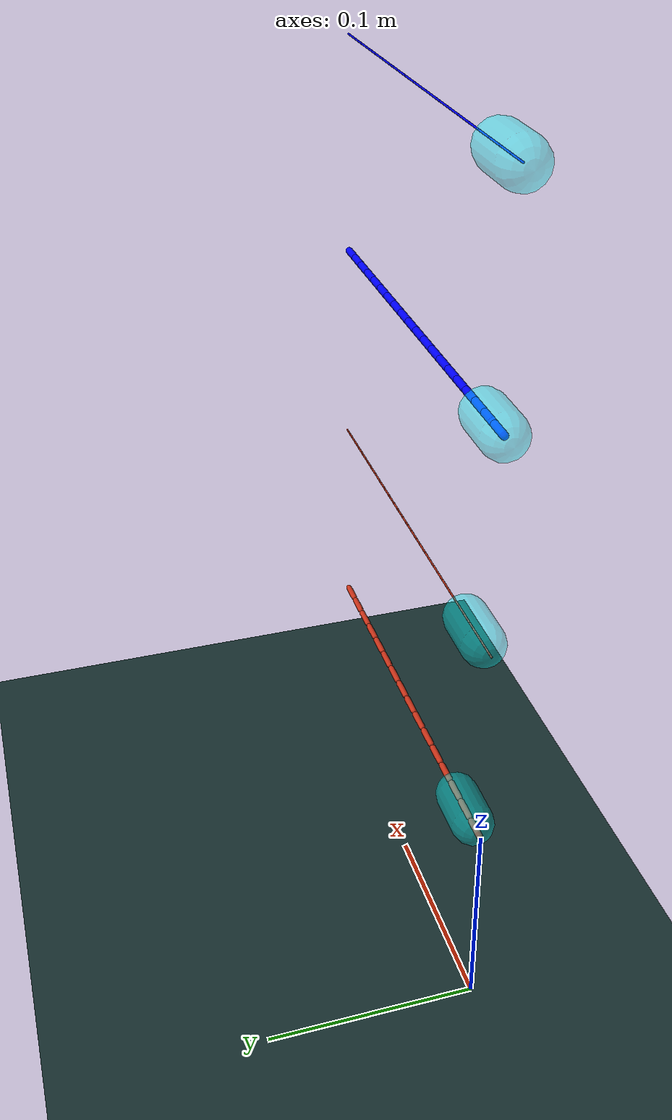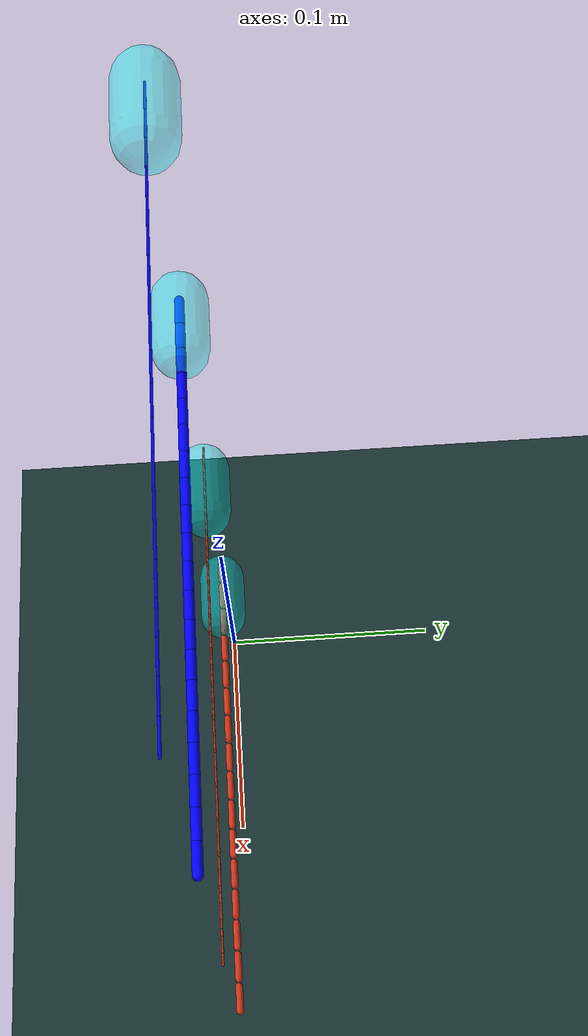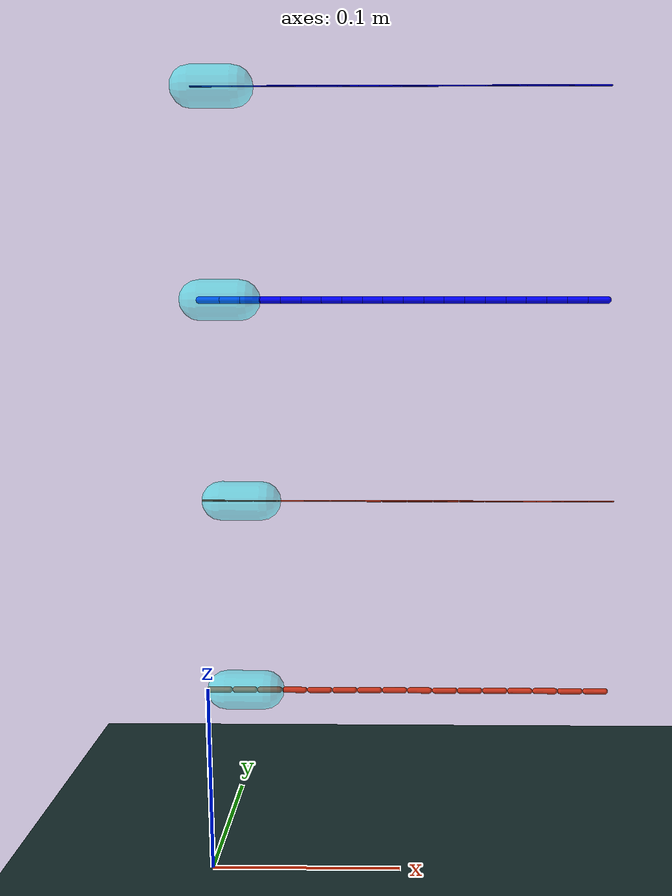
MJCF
<mujoco model="All_Whiskers">
  <compiler angle="radian" meshdir="asset/" texturedir="asset/"/>

  <option timestep="0.0002" gravity="0 0 0"/>

  <visual>
    <global elevation="0"/>
    <map stiffness="700" fogstart="1" fogend="15" zfar="40" haze="1" shadowscale="0.5"/>
    <rgba haze="0.15 0.25 0.35 1"/>
  </visual>

  <statistic meansize="0.05" extent="1" center="0 0 0.2"/>

  <default>
    <geom solref="0.0005 0.009" solimp="0.95 0.99 0.0001" margin="0.0003"/>
  </default>

  <extension>
    <plugin plugin="mujoco.elasticity.cable">
      <instance name="compositeCompositeNylon">
        <config key="twist" value="1e10"/>
        <config key="bend" value="3.1e9"/>
        <config key="vmax" value="0.1"/>
      </instance>
      <instance name="compositeComposite_Aluminium">
        <config key="twist" value="1e10"/>
        <config key="bend" value="70e9"/>
        <config key="vmax" value="0.1"/>
      </instance>
    </plugin>
  </extension>

  <custom>
    <text name="composite_CompositeNylon" data="rope_CompositeNylon"/>
    <text name="composite_Composite_Aluminium" data="rope_Composite_Aluminium"/>
  </custom>

  <worldbody>
    <light diffuse=".4 .2 .4" specular="0.2 0.1 0.1" pos="0 0 2.0" dir="0 0 -1" castshadow="false"/>
    <light directional="true" diffuse=".8 .8 .8" specular="0.2 0.2 0.2" pos="0 0 4" dir="0 0 -1"/>
   <geom name="ground" size="0 0 1" type="plane" condim="1" pos="0 0 0" quat="1 0 0 0" rgba = "0.1 0.2 0.2 1"/>
    <body name="WhiskerBody_Nylon" pos="0.0065 0 0.1">
      <body name="Seg0">
        <joint name="hinge0" pos="-0.005 0 0" axis="0 0 1" stiffness="0.888" damping="0.03" range="0 0.349"/>
        <geom name="Seg0_geom" size="0.0015 0.005" quat="-0.707107 0 0.707107 0" type="capsule" mass="0.0001" rgba="0.8 0.2 0.1 1"/>
       <site name="segmented_whis_base_site_nylon" pos="0.0135 0 0" quat="0.707107 0 0.707107 0" size="0.01 0.01" type="capsule" rgba="0 1 1 0.4"/>
        <body name="Seg1">
          <joint name="hinge1" pos="0.0065 0 0" axis="0 0 1" stiffness="0.888" range="-1.5708 1.5708" damping="0.03"/>
          <geom name="Seg1_geom" size="0.0015 0.005" pos="0.013 0 0" quat="-0.707107 0 0.707107 0" type="capsule" mass="0.0001" rgba="0.8 0.2 0.1 1"/>
          <body name="Seg2">
            <joint name="hinge2" pos="0.0195 0 0" axis="0 0 1" stiffness="0.888" range="-1.5708 1.5708" damping="0.03"/>
            <geom name="Seg2_geom" size="0.0015 0.005" pos="0.026 0 0" quat="-0.707107 0 0.707107 0" type="capsule" mass="0.0001" rgba="0.8 0.2 0.1 1"/>
            <body name="Seg3">
              <joint name="hinge3" pos="0.0325 0 0" axis="0 0 1" stiffness="0.888" range="-1.5708 1.5708" damping="0.03"/>
              <geom name="Seg3_geom" size="0.0015 0.005" pos="0.039 0 0" quat="-0.707107 0 0.707107 0" type="capsule" mass="0.0001" rgba="0.8 0.2 0.1 1"/>

              <body name="Seg4">
                <joint name="hinge4" pos="0.0455 0 0" axis="0 0 1" stiffness="0.888" range="-1.5708 1.5708" damping="0.03"/>
                <geom name="Seg4_geom" size="0.0015 0.005" pos="0.052 0 0" quat="-0.707107 0 0.707107 0" type="capsule" mass="0.0001" rgba="0.8 0.2 0.1 1"/>
                <body name="Seg5">
                  <joint name="hinge5" pos="0.0585 0 0" axis="0 0 1" stiffness="0.888" range="-1.5708 1.5708" damping="0.03"/>
                  <geom name="Seg5_geom" size="0.0015 0.005" pos="0.065 0 0" quat="-0.707107 0 0.707107 0" type="capsule" mass="0.0001" rgba="0.8 0.2 0.1 1"/>
                  <body name="Seg6">
                    <joint name="hinge6" pos="0.0715 0 0" axis="0 0 1" stiffness="0.888" range="-1.5708 1.5708" damping="0.03"/>
                    <geom name="Seg6_geom" size="0.0015 0.005" pos="0.078 0 0" quat="-0.707107 0 0.707107 0" type="capsule" mass="0.0001" rgba="0.8 0.2 0.1 1"/>
                    <body name="Seg7">
                      <joint name="hinge7" pos="0.0845 0 0" axis="0 0 1" stiffness="0.888" range="-1.5708 1.5708" damping="0.03"/>
                      <geom name="Seg7_geom" size="0.0015 0.005" pos="0.091 0 0" quat="-0.707107 0 0.707107 0" type="capsule" mass="0.0001" rgba="0.8 0.2 0.1 1"/>
                      <body name="Seg8">
                        <joint name="hinge8" pos="0.0975 0 0" axis="0 0 1" stiffness="0.888" range="-1.5708 1.5708" damping="0.03"/>
                        <geom name="Seg8_geom" size="0.0015 0.005" pos="0.104 0 0" quat="-0.707107 0 0.707107 0" type="capsule" mass="0.0001" rgba="0.8 0.2 0.1 1"/>
                        <body name="Seg9">
                          <joint name="hinge9" pos="0.1105 0 0" axis="0 0 1" stiffness="0.888" range="-1.5708 1.5708" damping="0.03"/>
                          <geom name="Seg9_geom" size="0.0015 0.005" pos="0.117 0 0" quat="-0.707107 0 0.707107 0" type="capsule" mass="0.0001" rgba="0.8 0.2 0.1 1"/>
                          <body name="Seg10">
                            <joint name="hinge10" pos="0.1235 0 0" axis="0 0 1" stiffness="0.888" range="-1.5708 1.5708" damping="0.03"/>
                            <geom name="Seg10_geom" size="0.0015 0.005" pos="0.13 0 0" quat="-0.707107 0 0.707107 0" type="capsule" mass="0.0001" rgba="0.8 0.2 0.1 1"/>
                            <body name="Seg11">
                              <joint name="hinge11" pos="0.1365 0 0" axis="0 0 1" stiffness="0.888" range="-1.5708 1.5708" damping="0.03"/>
                              <geom name="Seg11_geom" size="0.0015 0.005" pos="0.143 0 0" quat="-0.707107 0 0.707107 0" type="capsule" mass="0.0001" rgba="0.8 0.2 0.1 1"/>
                              <body name="Seg12">
                                <joint name="hinge12" pos="0.1495 0 0" axis="0 0 1" stiffness="0.888" range="-1.5708 1.5708" damping="0.03"/>
                                <geom name="Seg12_geom" size="0.0015 0.005" pos="0.156 0 0" quat="-0.707107 0 0.707107 0" type="capsule" mass="0.0001" rgba="0.8 0.2 0.1 1"/>
                                <body name="Seg13">
                                  <joint name="hinge13" pos="0.1625 0 0" axis="0 0 1" stiffness="0.888" range="-1.5708 1.5708" damping="0.03"/>
                                  <geom name="Seg13_geom" size="0.0015 0.005" pos="0.169 0 0" quat="-0.707107 0 0.707107 0" type="capsule" mass="0.0001" rgba="0.8 0.2 0.1 1"/>
                                  <body name="Seg14">
                                    <joint name="hinge14" pos="0.1755 0 0" axis="0 0 1" stiffness="0.888" range="-1.5708 1.5708" damping="0.03"/>
                                    <geom name="Seg14_geom" size="0.0015 0.005" pos="0.182 0 0" quat="-0.707107 0 0.707107 0" type="capsule" mass="0.0001" rgba="0.8 0.2 0.1 1"/>
                                    <body name="Seg15">
                                      <joint name="hinge15" pos="0.1885 0 0" axis="0 0 1" stiffness="0.888" range="-1.5708 1.5708" damping="0.03"/>
                                      <geom name="Seg15_geom" size="0.0015 0.005" pos="0.195 0 0" quat="-0.707107 0 0.707107 0" type="capsule" mass="0.0001" rgba="0.8 0.2 0.1 1"/>
                                    </body>
                                  </body>
                                </body>
                              </body>
                            </body>
                          </body>
                        </body>
                      </body>
                    </body>
                  </body>
                </body>
              </body>
            </body>
          </body>
        </body>
      </body>
    </body>
    <body name="WhiskerBody_Al" pos="0.0065 0 0.2">

      <body name="Seg0_Al">
        <joint name="hinge0_Al" pos="-0.005 0 0" axis="0 0 1" stiffness="0.1015" range="0 0.349" damping="0.004"/>
        <geom name="Seg0_geom_Al" size="0.0004 0.0061" quat="-0.707107 0 0.707107 0" type="capsule" mass="1.8e-05" rgba="0.8 0.2 0.1 1"/>
        <site name="segmented_whis_base_site_Al" pos="0.0135 0 0" quat="0.707107 0 0.707107 0" size="0.01 0.01" type="capsule" rgba="0 1 1 0.4"/>
        <body name="Seg1_Al">
          <joint name="hinge1_Al" pos="0.0065 0 0" axis="0 0 1" stiffness="0.1015" range="-1.5708 1.5708" damping="0.004"/>
          <geom name="Seg1_geom_Al" size="0.0004 0.0061" pos="0.013 0 0" quat="-0.707107 0 0.707107 0" type="capsule" mass="1.8e-05" rgba="0.8 0.2 0.1 1"/>
          <body name="Seg2_Al">
            <joint name="hinge2_Al" pos="0.0195 0 0" axis="0 0 1" stiffness="0.1015" range="-1.5708 1.5708" damping="0.004"/>
            <geom name="Seg2_geom_Al" size="0.0004 0.0061" pos="0.026 0 0" quat="-0.707107 0 0.707107 0" type="capsule" mass="1.8e-05" rgba="0.8 0.2 0.1 1"/>
            <body name="Seg3_Al">
              <joint name="hinge3_Al" pos="0.0325 0 0" axis="0 0 1" stiffness="0.1015" range="-1.5708 1.5708" damping="0.004"/>
              <geom name="Seg3_geom_Al" size="0.0004 0.0061" pos="0.039 0 0" quat="-0.707107 0 0.707107 0" type="capsule" mass="1.8e-05" rgba="0.8 0.2 0.1 1"/>
              <body name="Seg4_Al">
                <joint name="hinge4_Al" pos="0.0455 0 0" axis="0 0 1" stiffness="0.1015" range="-1.5708 1.5708" damping="0.004"/>
                <geom name="Seg4_geom_Al" size="0.0004 0.0061" pos="0.052 0 0" quat="-0.707107 0 0.707107 0" type="capsule" mass="1.8e-05" rgba="0.8 0.2 0.1 1"/>
                <body name="Seg5_Al">
                  <joint name="hinge5_Al" pos="0.0585 0 0" axis="0 0 1" stiffness="0.1015" range="-1.5708 1.5708" damping="0.004"/>
                  <geom name="Seg5_geom_Al" size="0.0004 0.0061" pos="0.065 0 0" quat="-0.707107 0 0.707107 0" type="capsule" mass="1.8e-05" rgba="0.8 0.2 0.1 1"/>
                  <body name="Seg6_Al">
                    <joint name="hinge6_Al" pos="0.0715 0 0" axis="0 0 1" stiffness="0.1015" range="-1.5708 1.5708" damping="0.004"/>
                    <geom name="Seg6_geom_Al" size="0.0004 0.0061" pos="0.078 0 0" quat="-0.707107 0 0.707107 0" type="capsule" mass="1.8e-05" rgba="0.8 0.2 0.1 1"/>
                    <body name="Seg7_Al">
                      <joint name="hinge7_Al" pos="0.0845 0 0" axis="0 0 1" stiffness="0.1015" range="-1.5708 1.5708" damping="0.004"/>
                      <geom name="Seg7_geom_Al" size="0.0004 0.0061" pos="0.091 0 0" quat="-0.707107 0 0.707107 0" type="capsule" mass="1.8e-05" rgba="0.8 0.2 0.1 1"/>
                      <body name="Seg8_Al">
                        <joint name="hinge8_Al" pos="0.0975 0 0" axis="0 0 1" stiffness="0.1015" range="-1.5708 1.5708" damping="0.004"/>
                        <geom name="Seg8_geom_Al" size="0.0004 0.0061" pos="0.104 0 0" quat="-0.707107 0 0.707107 0" type="capsule" mass="1.8e-05" rgba="0.8 0.2 0.1 1"/>
                        <body name="Seg9_Al">
                          <joint name="hinge9_Al" pos="0.1105 0 0" axis="0 0 1" stiffness="0.1015" range="-1.5708 1.5708" damping="0.004"/>
                          <geom name="Seg9_geom_Al" size="0.0004 0.0061" pos="0.117 0 0" quat="-0.707107 0 0.707107 0" type="capsule" mass="1.8e-05" rgba="0.8 0.2 0.1 1"/>
                          <body name="Seg10_Al">
                            <joint name="hinge10_Al" pos="0.1235 0 0" axis="0 0 1" stiffness="0.1015" range="-1.5708 1.5708" damping="0.004"/>
                            <geom name="Seg10_geom_Al" size="0.0004 0.0061" pos="0.13 0 0" quat="-0.707107 0 0.707107 0" type="capsule" mass="1.8e-05" rgba="0.8 0.2 0.1 1"/>
                            <body name="Seg11_Al">
                              <joint name="hinge11_Al" pos="0.1365 0 0" axis="0 0 1" stiffness="0.1015" range="-1.5708 1.5708" damping="0.004"/>
                              <geom name="Seg11_geom_Al" size="0.0004 0.0061" pos="0.143 0 0" quat="-0.707107 0 0.707107 0" type="capsule" mass="1.8e-05" rgba="0.8 0.2 0.1 1"/>
                              <body name="Seg12_Al">
                                <joint name="hinge12_Al" pos="0.1495 0 0" axis="0 0 1" stiffness="0.1015" range="-1.5708 1.5708" damping="0.004"/>
                                <geom name="Seg12_geom_Al" size="0.0004 0.0061" pos="0.156 0 0" quat="-0.707107 0 0.707107 0" type="capsule" mass="1.8e-05" rgba="0.8 0.2 0.1 1"/>
                                <body name="Seg13_Al">
                                  <joint name="hinge13_Al" pos="0.1625 0 0" axis="0 0 1" stiffness="0.1015" range="-1.5708 1.5708" damping="0.004"/>
                                  <geom name="Seg13_geom_Al" size="0.0004 0.0061" pos="0.169 0 0" quat="-0.707107 0 0.707107 0" type="capsule" mass="1.8e-05" rgba="0.8 0.2 0.1 1"/>
                                  <body name="Seg14_Al">
                                    <joint name="hinge14_Al" pos="0.1755 0 0" axis="0 0 1" stiffness="0.1015" range="-1.5708 1.5708" damping="0.004"/>
                                    <geom name="Seg14_geom_Al" size="0.0004 0.0061" pos="0.182 0 0" quat="-0.707107 0 0.707107 0" type="capsule" mass="1.8e-05" rgba="0.8 0.2 0.1 1"/>
                                    <body name="Seg15_Al">

                                      <joint name="hinge15_Al" pos="0.1885 0 0" axis="0 0 1" stiffness="0.1015" range="-1.5708 1.5708" damping="0.004"/>
                                      <geom name="Seg15_geom_Al" size="0.0004 0.0061" pos="0.195 0 0" quat="-0.707107 0 0.707107 0" type="capsule" mass="1.8e-05" rgba="0.8 0.2 0.1 1"/>
                                    </body>
                                  </body>
                                </body>
                              </body>
                            </body>
                          </body>
                        </body>
                      </body>
                    </body>
                  </body>
                </body>
              </body>
            </body>
          </body>
        </body>
      </body>
    </body>

    <body name="Composit_whisker_body_Nylon6/6" pos="0.0017 0 0.3">
      <body name="CompositeNylonB_first">
        <geom name="CompositeNylonG0" size="0.0017 0.005" pos="0.005 0 0" quat="0.707107 0 -0.707107 0" type="capsule" friction="1 0.1 0.1" solref="0.02 1" solimp="0.9 0.95 0.001" margin="0" mass="0.0001" rgba="0 0 1 1"/>
        <site name="CompositeNylonS_first" pos="0 0 0" group="3"/>
        <plugin instance="compositeCompositeNylon"/>
        <body name="CompositeNylonB_1" pos="0.01 0 0">
          <site name="conti_whis_base_site_Nylon6/6" pos="0.0 0 0" size="0.01 0.01" type="capsule" rgba="0 1 1 0.4" quat="0.707107 0 0.707107 0"/>
          <joint name="CompositeNylonJ_1" pos="0 0 0" type="ball" group="3" stiffness="1.931" actuatorfrclimited="false" damping="0.04"/>
          <geom name="CompositeNylonG1" size="0.0017 0.005" pos="0.005 0 0" quat="0.707107 0 -0.707107 0" type="capsule" friction="1 0.1 0.1" solref="0.02 1" solimp="0.9 0.95 0.001" margin="0" mass="0.0001" rgba="0 0 1 1"/>
          <plugin instance="compositeCompositeNylon"/>
          <body name="CompositeNylonB_2" pos="0.01 0 0">
            <joint name="CompositeNylonJ_2" pos="0 0 0" type="ball" group="3" stiffness="1.931" actuatorfrclimited="false" damping="0.04"/>
            <geom name="CompositeNylonG2" size="0.0017 0.005" pos="0.005 0 0" quat="0.707107 0 -0.707107 0" type="capsule" friction="1 0.1 0.1" solref="0.02 1" solimp="0.9 0.95 0.001" margin="0" mass="0.0001" rgba="0 0 1 1"/>
            <plugin instance="compositeCompositeNylon"/>
            <body name="CompositeNylonB_3" pos="0.01 0 0">
              <joint name="CompositeNylonJ_3" pos="0 0 0" type="ball" group="3" stiffness="1.931" actuatorfrclimited="false" damping="0.04"/>

              <geom name="CompositeNylonG3" size="0.0017 0.005" pos="0.005 0 0" quat="0.707107 0 -0.707107 0" type="capsule" friction="1 0.1 0.1" solref="0.02 1" solimp="0.9 0.95 0.001" margin="0" mass="0.0001" rgba="0 0 1 1"/>
              <plugin instance="compositeCompositeNylon"/>
              <body name="CompositeNylonB_4" pos="0.01 0 0">
                <joint name="CompositeNylonJ_4" pos="0 0 0" type="ball" group="3" stiffness="1.931" actuatorfrclimited="false" damping="0.04"/>
                <geom name="CompositeNylonG4" size="0.0017 0.005" pos="0.005 0 0" quat="0.707107 0 -0.707107 0" type="capsule" friction="1 0.1 0.1" solref="0.02 1" solimp="0.9 0.95 0.001" margin="0" mass="0.0001" rgba="0 0 1 1"/>
                <plugin instance="compositeCompositeNylon"/>
                <body name="CompositeNylonB_5" pos="0.01 0 0">
                  <joint name="CompositeNylonJ_5" pos="0 0 0" type="ball" group="3" stiffness="1.931" actuatorfrclimited="false" damping="0.04"/>
                  <geom name="CompositeNylonG5" size="0.0017 0.005" pos="0.005 0 0" quat="0.707107 0 -0.707107 0" type="capsule" friction="1 0.1 0.1" solref="0.02 1" solimp="0.9 0.95 0.001" margin="0" mass="0.0001" rgba="0 0 1 1"/>
                  <plugin instance="compositeCompositeNylon"/>
                  <body name="CompositeNylonB_6" pos="0.01 0 0">
                    <joint name="CompositeNylonJ_6" pos="0 0 0" type="ball" group="3" stiffness="1.931" actuatorfrclimited="false" damping="0.04"/>
                    <geom name="CompositeNylonG6" size="0.0017 0.005" pos="0.005 0 0" quat="0.707107 0 -0.707107 0" type="capsule" friction="1 0.1 0.1" solref="0.02 1" solimp="0.9 0.95 0.001" margin="0" mass="0.0001" rgba="0 0 1 1"/>
                    <plugin instance="compositeCompositeNylon"/>
                    <body name="CompositeNylonB_7" pos="0.01 0 0">
                      <joint name="CompositeNylonJ_7" pos="0 0 0" type="ball" group="3" stiffness="1.931" actuatorfrclimited="false" damping="0.04"/>
                      <geom name="CompositeNylonG7" size="0.0017 0.005" pos="0.005 0 0" quat="0.707107 0 -0.707107 0" type="capsule" friction="1 0.1 0.1" solref="0.02 1" solimp="0.9 0.95 0.001" margin="0" mass="0.0001" rgba="0 0 1 1"/>
                      <plugin instance="compositeCompositeNylon"/>
                      <body name="CompositeNylonB_8" pos="0.01 0 0">
                        <joint name="CompositeNylonJ_8" pos="0 0 0" type="ball" group="3" stiffness="1.931" actuatorfrclimited="false" damping="0.04"/>
                        <geom name="CompositeNylonG8" size="0.0017 0.005" pos="0.005 0 0" quat="0.707107 0 -0.707107 0" type="capsule" friction="1 0.1 0.1" solref="0.02 1" solimp="0.9 0.95 0.001" margin="0" mass="0.0001" rgba="0 0 1 1"/>
                        <plugin instance="compositeCompositeNylon"/>
                        <body name="CompositeNylonB_9" pos="0.01 0 0">
                          <joint name="CompositeNylonJ_9" pos="0 0 0" type="ball" group="3" stiffness="1.931" actuatorfrclimited="false" damping="0.04"/>
                          <geom name="CompositeNylonG9" size="0.0017 0.005" pos="0.005 0 0" quat="0.707107 0 -0.707107 0" type="capsule" friction="1 0.1 0.1" solref="0.02 1" solimp="0.9 0.95 0.001" margin="0" mass="0.0001" rgba="0 0 1 1"/>
                          <plugin instance="compositeCompositeNylon"/>
                          <body name="CompositeNylonB_10" pos="0.01 0 0">
                            <joint name="CompositeNylonJ_10" pos="0 0 0" type="ball" group="3" stiffness="1.931" actuatorfrclimited="false" damping="0.04"/>
                            <geom name="CompositeNylonG10" size="0.0017 0.005" pos="0.005 0 0" quat="0.707107 0 -0.707107 0" type="capsule" friction="1 0.1 0.1" solref="0.02 1" solimp="0.9 0.95 0.001" margin="0" mass="0.0001" rgba="0 0 1 1"/>
                            <plugin instance="compositeCompositeNylon"/>
                            <body name="CompositeNylonB_11" pos="0.01 0 0">
                              <joint name="CompositeNylonJ_11" pos="0 0 0" type="ball" group="3" stiffness="1.931" actuatorfrclimited="false" damping="0.04"/>
                              <geom name="CompositeNylonG11" size="0.0017 0.005" pos="0.005 0 0" quat="0.707107 0 -0.707107 0" type="capsule" friction="1 0.1 0.1" solref="0.02 1" solimp="0.9 0.95 0.001" margin="0" mass="0.0001" rgba="0 0 1 1"/>
                              <plugin instance="compositeCompositeNylon"/>
                              <body name="CompositeNylonB_12" pos="0.01 0 0">
                                <joint name="CompositeNylonJ_12" pos="0 0 0" type="ball" group="3" stiffness="1.931" actuatorfrclimited="false" damping="0.04"/>
                                <geom name="CompositeNylonG12" size="0.0017 0.005" pos="0.005 0 0" quat="0.707107 0 -0.707107 0" type="capsule" friction="1 0.1 0.1" solref="0.02 1" solimp="0.9 0.95 0.001" margin="0" mass="0.0001" rgba="0 0 1 1"/>
                                <plugin instance="compositeCompositeNylon"/>
                                <body name="CompositeNylonB_13" pos="0.01 0 0">
                                  <joint name="CompositeNylonJ_13" pos="0 0 0" type="ball" group="3" stiffness="1.931" actuatorfrclimited="false" damping="0.04"/>
                                  <geom name="CompositeNylonG13" size="0.0017 0.005" pos="0.005 0 0" quat="0.707107 0 -0.707107 0" type="capsule" friction="1 0.1 0.1" solref="0.02 1" solimp="0.9 0.95 0.001" margin="0" mass="0.0001" rgba="0 0 1 1"/>
                                  <plugin instance="compositeCompositeNylon"/>
                                  <body name="CompositeNylonB_14" pos="0.01 0 0">
                                    <joint name="CompositeNylonJ_14" pos="0 0 0" type="ball" group="3" stiffness="1.931" actuatorfrclimited="false" damping="0.04"/>
                                    <geom name="CompositeNylonG14" size="0.0017 0.005" pos="0.005 0 0" quat="0.707107 0 -0.707107 0" type="capsule" friction="1 0.1 0.1" solref="0.02 1" solimp="0.9 0.95 0.001" margin="0" mass="0.0001" rgba="0 0 1 1"/>
                                    <plugin instance="compositeCompositeNylon"/>
                                    <body name="CompositeNylonB_15" pos="0.01 0 0">
                                      <joint name="CompositeNylonJ_15" pos="0 0 0" type="ball" group="3" stiffness="1.931" actuatorfrclimited="false" damping="0.04"/>
                                      <geom name="CompositeNylonG15" size="0.0017 0.005" pos="0.005 0 0" quat="0.707107 0 -0.707107 0" type="capsule" friction="1 0.1 0.1" solref="0.02 1" solimp="0.9 0.95 0.001" margin="0" mass="0.0001" rgba="0 0 1 1"/>
                                      <plugin instance="compositeCompositeNylon"/>
                                      <body name="CompositeNylonB_16" pos="0.00999999 0 0">
                                        <joint name="CompositeNylonJ_16" pos="0 0 0" type="ball" group="3" stiffness="1.931" actuatorfrclimited="false" damping="0.04"/>
                                        <geom name="CompositeNylonG16" size="0.0017 0.005" pos="0.005 0 0" quat="0.707107 0 -0.707107 0" type="capsule" friction="1 0.1 0.1" solref="0.02 1" solimp="0.9 0.95 0.001" margin="0" mass="0.0001" rgba="0 0 1 1"/>
                                        <plugin instance="compositeCompositeNylon"/>
                                        <body name="CompositeNylonB_17" pos="0.01 0 0">
                                          <joint name="CompositeNylonJ_17" pos="0 0 0" type="ball" group="3" stiffness="1.931" actuatorfrclimited="false" damping="0.04"/>
                                          <geom name="CompositeNylonG17" size="0.0017 0.005" pos="0.005 0 0" quat="0.707107 0 -0.707107 0" type="capsule" friction="1 0.1 0.1" solref="0.02 1" solimp="0.9 0.95 0.001" margin="0" mass="0.0001" rgba="0 0 1 1"/>
                                          <plugin instance="compositeCompositeNylon"/>
                                          <body name="CompositeNylonB_18" pos="0.01 0 0">
                                            <joint name="CompositeNylonJ_18" pos="0 0 0" type="ball" group="3" stiffness="1.931" actuatorfrclimited="false" damping="0.04"/>
                                            <geom name="CompositeNylonG18" size="0.0017 0.005" pos="0.005 0 0" quat="0.707107 0 -0.707107 0" type="capsule" friction="1 0.1 0.1" solref="0.02 1" solimp="0.9 0.95 0.001" margin="0" mass="0.0001" rgba="0 0 1 1"/>
                                            <plugin instance="compositeCompositeNylon"/>
                                            <body name="CompositeNylonB_last" pos="0.00999999 0 0">
                                              <joint name="CompositeNylonJ_last" pos="0 0 0" type="ball" group="3" stiffness="1.931" actuatorfrclimited="false" damping="0.04"/>
                                              <geom name="CompositeNylonG19" size="0.0017 0.005" pos="0.005 0 0" quat="0.707107 0 -0.707107 0" type="capsule" friction="1 0.1 0.1" solref="0.02 1" solimp="0.9 0.95 0.001" margin="0" mass="0.0001" rgba="0 0 1 1"/>
                                              <site name="CompositeNylonS_last" pos="0.01 0 0" group="3"/>
                                              <plugin instance="compositeCompositeNylon"/>
                                            </body>
                                          </body>
                                        </body>
                                      </body>
                                    </body>
                                  </body>
                                </body>
                              </body>
                            </body>
                          </body>
                        </body>
                      </body>
                    </body>
                  </body>
                </body>
              </body>
            </body>
          </body>
        </body>
      </body>
    </body>
    <body name="Composit_whisker_body_Al" pos="0.0004 0 0.4">
      <body name="Composite_AluminiumB_first">
        <geom name="Composite_AluminiumG0" size="0.0004 0.005" pos="0.005 0 0" quat="0.707107 0 -0.707107 0" type="capsule" friction="1 0.1 0.1" solref="0.02 1" solimp="0.9 0.95 0.001" margin="0" mass="1.5e-05" rgba="0 0 1 1"/>
        <site name="Composite_AluminiumS_first" pos="0 0 0" group="3"/>
        <plugin instance="compositeComposite_Aluminium"/>
        <body name="Composite_AluminiumB_1" pos="0.01 0 0">
          <site name="conti_whis_base_site_Al" pos="0.0 0 0" quat="0.707107 0 0.707107 0" size="0.01 0.01" type="capsule" rgba="0 1 1 0.4"/>
          <joint name="Composite_AluminiumJ_1" pos="0 0 0" type="ball" group="3" stiffness="0.134" actuatorfrclimited="false" damping="0.004"/>
          <geom name="Composite_AluminiumG1" size="0.0004 0.005" pos="0.005 0 0" quat="0.707107 0 -0.707107 0" type="capsule" friction="1 0.1 0.1" solref="0.02 1" solimp="0.9 0.95 0.001" margin="0" mass="1.5e-05" rgba="0 0 1 1"/>
          <plugin instance="compositeComposite_Aluminium"/>
          <body name="Composite_AluminiumB_2" pos="0.01 0 0">
            <joint name="Composite_AluminiumJ_2" pos="0 0 0" type="ball" group="3" stiffness="0.134" actuatorfrclimited="false" damping="0.004"/>
            <geom name="Composite_AluminiumG2" size="0.0004 0.005" pos="0.005 0 0" quat="0.707107 0 -0.707107 0" type="capsule" friction="1 0.1 0.1" solref="0.02 1" solimp="0.9 0.95 0.001" margin="0" mass="1.5e-05" rgba="0 0 1 1"/>
            <plugin instance="compositeComposite_Aluminium"/>
            <body name="Composite_AluminiumB_3" pos="0.01 0 0">
              <joint name="Composite_AluminiumJ_3" pos="0 0 0" type="ball" group="3" stiffness="0.134" actuatorfrclimited="false" damping="0.004"/>
              <geom name="Composite_AluminiumG3" size="0.0004 0.005" pos="0.005 0 0" quat="0.707107 0 -0.707107 0" type="capsule" friction="1 0.1 0.1" solref="0.02 1" solimp="0.9 0.95 0.001" margin="0" mass="1.5e-05" rgba="0 0 1 1"/>
              <plugin instance="compositeComposite_Aluminium"/>
              <body name="Composite_AluminiumB_4" pos="0.01 0 0">
                <joint name="Composite_AluminiumJ_4" pos="0 0 0" type="ball" group="3" stiffness="0.134" actuatorfrclimited="false" damping="0.004"/>
                <geom name="Composite_AluminiumG4" size="0.0004 0.005" pos="0.005 0 0" quat="0.707107 0 -0.707107 0" type="capsule" friction="1 0.1 0.1" solref="0.02 1" solimp="0.9 0.95 0.001" margin="0" mass="1.5e-05" rgba="0 0 1 1"/>
                <plugin instance="compositeComposite_Aluminium"/>
                <body name="Composite_AluminiumB_5" pos="0.01 0 0">
                  <joint name="Composite_AluminiumJ_5" pos="0 0 0" type="ball" group="3" stiffness="0.134" actuatorfrclimited="false" damping="0.004"/>
                  <geom name="Composite_AluminiumG5" size="0.0004 0.005" pos="0.005 0 0" quat="0.707107 0 -0.707107 0" type="capsule" friction="1 0.1 0.1" solref="0.02 1" solimp="0.9 0.95 0.001" margin="0" mass="1.5e-05" rgba="0 0 1 1"/>
                  <plugin instance="compositeComposite_Aluminium"/>
                  <body name="Composite_AluminiumB_6" pos="0.01 0 0">
                    <joint name="Composite_AluminiumJ_6" pos="0 0 0" type="ball" group="3" stiffness="0.134" actuatorfrclimited="false" damping="0.004"/>
                    <geom name="Composite_AluminiumG6" size="0.0004 0.005" pos="0.005 0 0" quat="0.707107 0 -0.707107 0" type="capsule" friction="1 0.1 0.1" solref="0.02 1" solimp="0.9 0.95 0.001" margin="0" mass="1.5e-05" rgba="0 0 1 1"/>
                    <plugin instance="compositeComposite_Aluminium"/>
                    <body name="Composite_AluminiumB_7" pos="0.01 0 0">
                      <joint name="Composite_AluminiumJ_7" pos="0 0 0" type="ball" group="3" stiffness="0.134" actuatorfrclimited="false" damping="0.004"/>
                      <geom name="Composite_AluminiumG7" size="0.0004 0.005" pos="0.005 0 0" quat="0.707107 0 -0.707107 0" type="capsule" friction="1 0.1 0.1" solref="0.02 1" solimp="0.9 0.95 0.001" margin="0" mass="1.5e-05" rgba="0 0 1 1"/>
                      <plugin instance="compositeComposite_Aluminium"/>
                      <body name="Composite_AluminiumB_8" pos="0.01 0 0">
                        <joint name="Composite_AluminiumJ_8" pos="0 0 0" type="ball" group="3" stiffness="0.134" actuatorfrclimited="false" damping="0.004"/>
                        <geom name="Composite_AluminiumG8" size="0.0004 0.005" pos="0.005 0 0" quat="0.707107 0 -0.707107 0" type="capsule" friction="1 0.1 0.1" solref="0.02 1" solimp="0.9 0.95 0.001" margin="0" mass="1.5e-05" rgba="0 0 1 1"/>
                        <plugin instance="compositeComposite_Aluminium"/>
                        <body name="Composite_AluminiumB_9" pos="0.01 0 0">
                          <joint name="Composite_AluminiumJ_9" pos="0 0 0" type="ball" group="3" stiffness="0.134" actuatorfrclimited="false" damping="0.004"/>
                          <geom name="Composite_AluminiumG9" size="0.0004 0.005" pos="0.005 0 0" quat="0.707107 0 -0.707107 0" type="capsule" friction="1 0.1 0.1" solref="0.02 1" solimp="0.9 0.95 0.001" margin="0" mass="1.5e-05" rgba="0 0 1 1"/>
                          <plugin instance="compositeComposite_Aluminium"/>
                          <body name="Composite_AluminiumB_10" pos="0.01 0 0">
                            <joint name="Composite_AluminiumJ_10" pos="0 0 0" type="ball" group="3" stiffness="0.134" actuatorfrclimited="false" damping="0.004"/>
                            <geom name="Composite_AluminiumG10" size="0.0004 0.005" pos="0.005 0 0" quat="0.707107 0 -0.707107 0" type="capsule" friction="1 0.1 0.1" solref="0.02 1" solimp="0.9 0.95 0.001" margin="0" mass="1.5e-05" rgba="0 0 1 1"/>
                            <plugin instance="compositeComposite_Aluminium"/>
                            <body name="Composite_AluminiumB_11" pos="0.01 0 0">
                              <joint name="Composite_AluminiumJ_11" pos="0 0 0" type="ball" group="3" stiffness="0.134" actuatorfrclimited="false" damping="0.004"/>
                              <geom name="Composite_AluminiumG11" size="0.0004 0.005" pos="0.005 0 0" quat="0.707107 0 -0.707107 0" type="capsule" friction="1 0.1 0.1" solref="0.02 1" solimp="0.9 0.95 0.001" margin="0" mass="1.5e-05" rgba="0 0 1 1"/>
                              <plugin instance="compositeComposite_Aluminium"/>
                              <body name="Composite_AluminiumB_12" pos="0.01 0 0">
                                <joint name="Composite_AluminiumJ_12" pos="0 0 0" type="ball" group="3" stiffness="0.134" actuatorfrclimited="false" damping="0.004"/>
                                <geom name="Composite_AluminiumG12" size="0.0004 0.005" pos="0.005 0 0" quat="0.707107 0 -0.707107 0" type="capsule" friction="1 0.1 0.1" solref="0.02 1" solimp="0.9 0.95 0.001" margin="0" mass="1.5e-05" rgba="0 0 1 1"/>
                                <plugin instance="compositeComposite_Aluminium"/>
                                <body name="Composite_AluminiumB_13" pos="0.01 0 0">
                                  <joint name="Composite_AluminiumJ_13" pos="0 0 0" type="ball" group="3" stiffness="0.134" actuatorfrclimited="false" damping="0.004"/>
                                  <geom name="Composite_AluminiumG13" size="0.0004 0.005" pos="0.005 0 0" quat="0.707107 0 -0.707107 0" type="capsule" friction="1 0.1 0.1" solref="0.02 1" solimp="0.9 0.95 0.001" margin="0" mass="1.5e-05" rgba="0 0 1 1"/>
                                  <plugin instance="compositeComposite_Aluminium"/>
                                  <body name="Composite_AluminiumB_14" pos="0.01 0 0">
                                    <joint name="Composite_AluminiumJ_14" pos="0 0 0" type="ball" group="3" stiffness="0.134" actuatorfrclimited="false" damping="0.004"/>
                                    <geom name="Composite_AluminiumG14" size="0.0004 0.005" pos="0.005 0 0" quat="0.707107 0 -0.707107 0" type="capsule" friction="1 0.1 0.1" solref="0.02 1" solimp="0.9 0.95 0.001" margin="0" mass="1.5e-05" rgba="0 0 1 1"/>
                                    <plugin instance="compositeComposite_Aluminium"/>
                                    <body name="Composite_AluminiumB_15" pos="0.01 0 0">
                                      <joint name="Composite_AluminiumJ_15" pos="0 0 0" type="ball" group="3" stiffness="0.134" actuatorfrclimited="false" damping="0.004"/>
                                      <geom name="Composite_AluminiumG15" size="0.0004 0.005" pos="0.005 0 0" quat="0.707107 0 -0.707107 0" type="capsule" friction="1 0.1 0.1" solref="0.02 1" solimp="0.9 0.95 0.001" margin="0" mass="1.5e-05" rgba="0 0 1 1"/>
                                      <plugin instance="compositeComposite_Aluminium"/>
                                      <body name="Composite_AluminiumB_16" pos="0.00999999 0 0">
                                        <joint name="Composite_AluminiumJ_16" pos="0 0 0" type="ball" group="3" stiffness="0.134" actuatorfrclimited="false" damping="0.004"/>
                                        <geom name="Composite_AluminiumG16" size="0.0004 0.005" pos="0.005 0 0" quat="0.707107 0 -0.707107 0" type="capsule" friction="1 0.1 0.1" solref="0.02 1" solimp="0.9 0.95 0.001" margin="0" mass="1.5e-05" rgba="0 0 1 1"/>
                                        <plugin instance="compositeComposite_Aluminium"/>
                                        <body name="Composite_AluminiumB_17" pos="0.01 0 0">
                                          <joint name="Composite_AluminiumJ_17" pos="0 0 0" type="ball" group="3" stiffness="0.134" actuatorfrclimited="false" damping="0.004"/>
                                          <geom name="Composite_AluminiumG17" size="0.0004 0.005" pos="0.005 0 0" quat="0.707107 0 -0.707107 0" type="capsule" friction="1 0.1 0.1" solref="0.02 1" solimp="0.9 0.95 0.001" margin="0" mass="1.5e-05" rgba="0 0 1 1"/>
                                          <plugin instance="compositeComposite_Aluminium"/>
                                          <body name="Composite_AluminiumB_18" pos="0.01 0 0">
                                            <joint name="Composite_AluminiumJ_18" pos="0 0 0" type="ball" group="3" stiffness="0.134" actuatorfrclimited="false" damping="0.004"/>
                                            <geom name="Composite_AluminiumG18" size="0.0004 0.005" pos="0.005 0 0" quat="0.707107 0 -0.707107 0" type="capsule" friction="1 0.1 0.1" solref="0.02 1" solimp="0.9 0.95 0.001" margin="0" mass="1.5e-05" rgba="0 0 1 1"/>
                                            <plugin instance="compositeComposite_Aluminium"/>
                                            <body name="Composite_AluminiumB_last" pos="0.00999999 0 0">
                                              <joint name="Composite_AluminiumJ_last" pos="0 0 0" type="ball" group="3" stiffness="0.134" actuatorfrclimited="false" damping="0.004"/>
                                              <geom name="Composite_AluminiumG19" size="0.0004 0.005" pos="0.005 0 0" quat="0.707107 0 -0.707107 0" type="capsule" friction="1 0.1 0.1" solref="0.02 1" solimp="0.9 0.95 0.001" margin="0" mass="1.5e-05" rgba="0 0 1 1"/>
                                              <site name="Composite_AluminiumS_last" pos="0.01 0 0" group="3"/>
                                              <plugin instance="compositeComposite_Aluminium"/>
                                            </body>
                                          </body>
                                        </body>
                                      </body>
                                    </body>
                                  </body>
                                </body>
                              </body>
                            </body>
                          </body>
                        </body>
                      </body>
                    </body>
                  </body>
                </body>
              </body>
            </body>
          </body>
        </body>
      </body>
    </body>
  </worldbody>

  <contact>
    <exclude body1="CompositeNylonB_first" body2="CompositeNylonB_1"/>
    <exclude body1="CompositeNylonB_1" body2="CompositeNylonB_2"/>
    <exclude body1="CompositeNylonB_2" body2="CompositeNylonB_3"/>
    <exclude body1="CompositeNylonB_3" body2="CompositeNylonB_4"/>
    <exclude body1="CompositeNylonB_4" body2="CompositeNylonB_5"/>
    <exclude body1="CompositeNylonB_5" body2="CompositeNylonB_6"/>
    <exclude body1="CompositeNylonB_6" body2="CompositeNylonB_7"/>
    <exclude body1="CompositeNylonB_7" body2="CompositeNylonB_8"/>
    <exclude body1="CompositeNylonB_8" body2="CompositeNylonB_9"/>
    <exclude body1="CompositeNylonB_9" body2="CompositeNylonB_10"/>
    <exclude body1="CompositeNylonB_10" body2="CompositeNylonB_11"/>
    <exclude body1="CompositeNylonB_11" body2="CompositeNylonB_12"/>
    <exclude body1="CompositeNylonB_12" body2="CompositeNylonB_13"/>
    <exclude body1="CompositeNylonB_13" body2="CompositeNylonB_14"/>
    <exclude body1="CompositeNylonB_14" body2="CompositeNylonB_15"/>
    <exclude body1="CompositeNylonB_15" body2="CompositeNylonB_16"/>
    <exclude body1="CompositeNylonB_16" body2="CompositeNylonB_17"/>
    <exclude body1="CompositeNylonB_17" body2="CompositeNylonB_18"/>
    <exclude body1="CompositeNylonB_18" body2="CompositeNylonB_last"/>
    <exclude body1="Composite_AluminiumB_first" body2="Composite_AluminiumB_1"/>
    <exclude body1="Composite_AluminiumB_1" body2="Composite_AluminiumB_2"/>
    <exclude body1="Composite_AluminiumB_2" body2="Composite_AluminiumB_3"/>
    <exclude body1="Composite_AluminiumB_3" body2="Composite_AluminiumB_4"/>
    <exclude body1="Composite_AluminiumB_4" body2="Composite_AluminiumB_5"/>
    <exclude body1="Composite_AluminiumB_5" body2="Composite_AluminiumB_6"/>
    <exclude body1="Composite_AluminiumB_6" body2="Composite_AluminiumB_7"/>
    <exclude body1="Composite_AluminiumB_7" body2="Composite_AluminiumB_8"/>
    <exclude body1="Composite_AluminiumB_8" body2="Composite_AluminiumB_9"/>
    <exclude body1="Composite_AluminiumB_9" body2="Composite_AluminiumB_10"/>
    <exclude body1="Composite_AluminiumB_10" body2="Composite_AluminiumB_11"/>
    <exclude body1="Composite_AluminiumB_11" body2="Composite_AluminiumB_12"/>
    <exclude body1="Composite_AluminiumB_12" body2="Composite_AluminiumB_13"/>
    <exclude body1="Composite_AluminiumB_13" body2="Composite_AluminiumB_14"/>
    <exclude body1="Composite_AluminiumB_14" body2="Composite_AluminiumB_15"/>
    <exclude body1="Composite_AluminiumB_15" body2="Composite_AluminiumB_16"/>
    <exclude body1="Composite_AluminiumB_16" body2="Composite_AluminiumB_17"/>
    <exclude body1="Composite_AluminiumB_17" body2="Composite_AluminiumB_18"/>
    <exclude body1="Composite_AluminiumB_18" body2="Composite_AluminiumB_last"/>
  </contact>

  <sensor>
    <force site="segmented_whis_base_site_nylon" name="manual_base_force_sensor_nylon"/>
    <torque site="segmented_whis_base_site_nylon" name="manual_base_torque_sensor_nylon"/>
    <force site="segmented_whis_base_site_Al" name="manual_base_force_sensor_Al"/>
    <torque site="segmented_whis_base_site_Al" name="manual_base_torque_sensor_Al"/>
    <force site="conti_whis_base_site_Nylon6/6" name="base_force_sensor_composite_nylon"/>
    <torque site="conti_whis_base_site_Nylon6/6" name="base_torque_sensor_composite_nylon"/>
    <force site="conti_whis_base_site_Al" name="base_force_sensor_composite_Al"/>
    <torque site="conti_whis_base_site_Al" name="base_torque_sensor_composite_Al"/>
  </sensor>
</mujoco>
